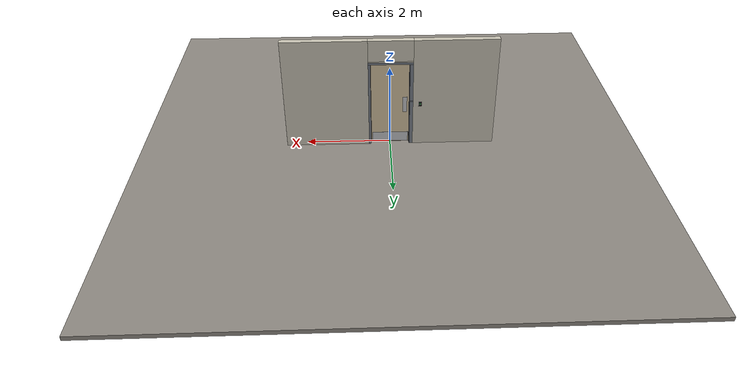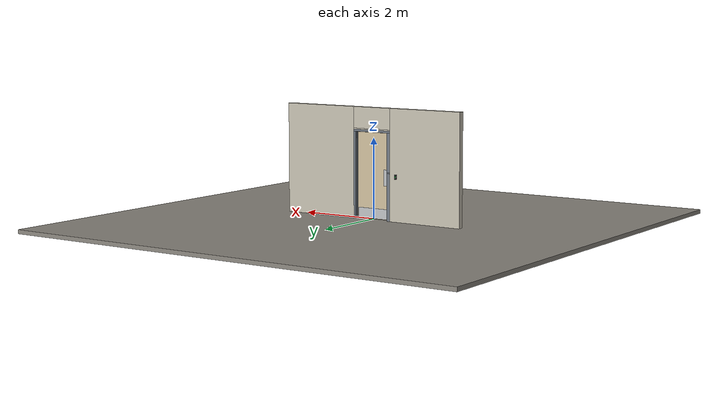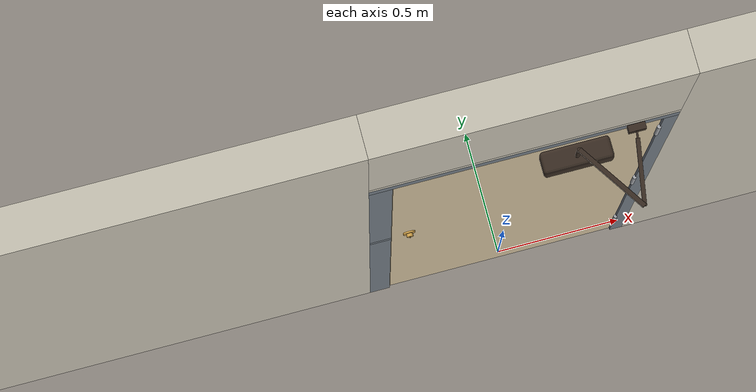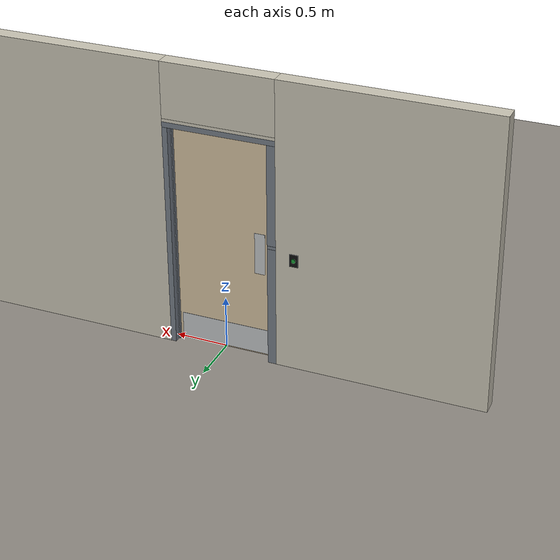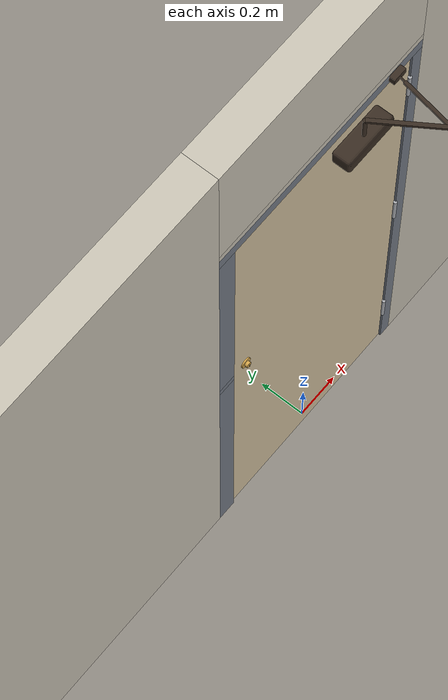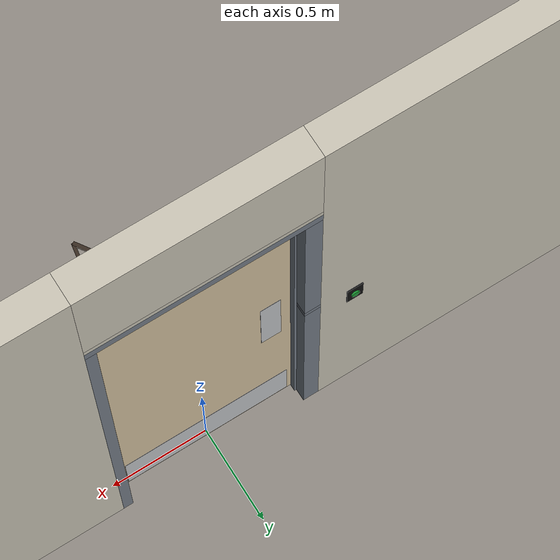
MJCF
<?xml version="1.0" ?>
<mujoco model="db0539_swing_single_full">
  <compiler angle="radian" meshdir="../../hardware" texturedir="../../textures" autolimits="true" inertiafromgeom="false"/>
  <option timestep="0.002" integrator="implicitfast" cone="elliptic" impratio="10" noslip_iterations="3">
    <flag multiccd="enable"/>
  </option>
  <size memory="16M"/>
  <default>
    <geom condim="4" solref="0.005 1" solimp="0.95 0.99 0.001"/>
    <joint solreflimit="0.005 1" solimplimit="0.95 0.99 0.001"/>
    <tendon solreflimit="0.005 1"/>
    <equality solref="0.002 1"/>
  </default>
  <visual>
    <headlight ambient="0.4 0.4 0.4" diffuse="0.7 0.7 0.7" specular="0.2 0.2 0.2"/>
    <quality shadowsize="4096"/>
    <map znear="0.01" zfar="60"/>
  </visual>
  <asset>
    <mesh name="closer_body_b226fdb10b" file="closer_body_b226fdb10b.obj"/>
    <mesh name="cyl_face_e9e5036966" file="cyl_face_e9e5036966.obj"/>
    <mesh name="hinge_e22b26c0c1" file="hinge_e22b26c0c1.obj"/>
    <mesh name="hinge_jamb_e1d088f8dc" file="hinge_jamb_e1d088f8dc.obj"/>
    <material name="mat_floor" rgba="0.55 0.53 0.5 1" specular="0.2" shininess="0.15" reflectance="0"/>
    <material name="mat_wall" rgba="0.78 0.76 0.7 1" specular="0.2" shininess="0.1" reflectance="0"/>
    <material name="mat_leaf" rgba="0.82 0.75 0.62 1" specular="0.23" shininess="0.45" reflectance="0.02"/>
    <material name="mat_hinge" rgba="0.65 0.66 0.68 1" specular="0.74" shininess="0.5" reflectance="0.36"/>
    <material name="mat_op_stainless" rgba="0.75 0.76 0.77 1" specular="0.8" shininess="0.65" reflectance="0.4"/>
    <material name="mat_deadbolt" rgba="0.85 0.66 0.3 1" specular="0.8" shininess="0.75" reflectance="0.4"/>
    <material name="mat_frame" rgba="0.45 0.48 0.52 1" specular="0.32" shininess="0.6" reflectance="0.08"/>
    <material name="mat_closer" rgba="0.22 0.17 0.13 1" specular="0.8" shininess="0.6" reflectance="0.4"/>
    <material name="mat_kick" rgba="0.75 0.76 0.77 1" specular="0.8" shininess="0.65" reflectance="0.4"/>
    <material name="mat_wallreader" rgba="0.05 0.05 0.05 1" specular="0.38" shininess="0.3" reflectance="0.12"/>
    <material name="mat_rex" rgba="0.1 0.6 0.2 1" specular="0.2" shininess="0.6" reflectance="0"/>
    <texture name="skybox" type="skybox" builtin="gradient" rgb1="0.6 0.7 0.85" rgb2="0.9 0.92 0.95" width="256" height="256"/>
  </asset>
  <worldbody>
    <light name="sun" pos="1.5 -2.5 4" dir="-0.3 0.5 -0.8" directional="true" diffuse="0.8 0.8 0.8" specular="0.3 0.3 0.3" castshadow="true"/>
    <light name="fill" pos="-1.5 2.5 3" dir="0.3 -0.5 -0.7" directional="true" diffuse="0.35 0.35 0.4" castshadow="false"/>
    <camera name="robot_view" pos="0 -2.594313 1.812087" xyaxes="1 0 0 0 0.26963 0.962964" fovy="52"/>
    <camera name="far_view" pos="0 2.681312 1.812087" xyaxes="-1 0 0 0 -0.26963 0.962964" fovy="52"/>
    <camera name="iso" pos="-2.004737 -2.172262 2.234138" xyaxes="0.741536 -0.670913 0 0.242917 0.268487 0.932151" fovy="46"/>
    <camera name="detail_handle" pos="-0.1735 -0.7565 1.32" xyaxes="0.97561 0.219512 0 -0.070934 0.315262 0.94635" fovy="38"/>
    <geom name="floor" type="box" size="6 6 0.05" pos="0 0 -0.05" material="mat_floor" group="0" contype="1" conaffinity="1" friction="0.8 0.005 0.0001" density="2400"/>
    <geom name="wall_left" type="box" size="0.97975 0.0725 1.3735" pos="-1.52025 0.0435 1.3735" material="mat_wall" group="0" contype="1" conaffinity="1" friction="0.6 0.005 0.0001" density="800"/>
    <geom name="wall_right" type="box" size="0.99475 0.0725 1.3735" pos="1.50525 0.0435 1.3735" material="mat_wall" group="0" contype="1" conaffinity="1" friction="0.6 0.005 0.0001" density="800"/>
    <geom name="wall_header" type="box" size="0.5255 0.0725 0.26" pos="-0.015 0.0435 2.487" material="mat_wall" group="0" contype="1" conaffinity="1" friction="0.6 0.005 0.0001" density="800"/>
    <geom name="hinge_0_jamb" type="mesh" mesh="hinge_jamb_e1d088f8dc" pos="0.4575 -0.029 0.259" quat="0 0 1 0" material="mat_hinge" group="1" contype="0" conaffinity="0" density="7850"/>
    <geom name="hinge_1_jamb" type="mesh" mesh="hinge_jamb_e1d088f8dc" pos="0.4575 -0.029 1.076" quat="0 0 1 0" material="mat_hinge" group="1" contype="0" conaffinity="0" density="7850"/>
    <geom name="hinge_2_jamb" type="mesh" mesh="hinge_jamb_e1d088f8dc" pos="0.4575 -0.029 1.963" quat="0 0 1 0" material="mat_hinge" group="1" contype="0" conaffinity="0" density="7850"/>
    <geom name="leaf_deadbolt_strike_b" type="box" size="0.0155 0.003 0.0005" pos="-0.46 0 1.1615" quat="0.5 0.5 0.5 0.5" material="mat_deadbolt" group="1" contype="0" conaffinity="0" density="7800"/>
    <geom name="leaf_deadbolt_strike_l" type="box" size="0.003 0.0155 0.0005" pos="-0.46 -0.0125 1.18" quat="0.5 0.5 0.5 0.5" material="mat_deadbolt" group="1" contype="0" conaffinity="0" density="7800"/>
    <geom name="leaf_deadbolt_strike_t" type="box" size="0.0155 0.003 0.0005" pos="-0.46 0 1.1985" quat="0.5 0.5 0.5 0.5" material="mat_deadbolt" group="1" contype="0" conaffinity="0" density="7800"/>
    <geom name="leaf_deadbolt_strike_r" type="box" size="0.003 0.0155 0.0005" pos="-0.46 0.0125 1.18" quat="0.5 0.5 0.5 0.5" material="mat_deadbolt" group="1" contype="0" conaffinity="0" density="7800"/>
    <geom name="jamb_hinge" type="box" size="0.025 0.0725 1.0735" pos="0.4855 0.0435 1.0735" material="mat_frame" group="0" contype="1" conaffinity="1" friction="0.6 0.005 0.0001" density="300"/>
    <geom name="strike_1180_wall_n" type="box" size="0.04 0.05325 0.0155" pos="-0.5005 0.06275 1.18" material="mat_frame" group="0" contype="1" conaffinity="1" friction="0.6 0.005 0.0001" density="300"/>
    <geom name="strike_1180_wall_p" type="box" size="0.04 0.00975 0.0155" pos="-0.5005 -0.01925 1.18" material="mat_frame" group="0" contype="1" conaffinity="1" friction="0.6 0.005 0.0001" density="300"/>
    <geom name="strike_1180_back" type="box" size="0.0253 0.0095 0.0155" pos="-0.5152 0 1.18" material="mat_frame" group="0" contype="1" conaffinity="1" friction="0.6 0.005 0.0001" density="300"/>
    <geom name="jamb_strike_0" type="box" size="0.04 0.0725 0.58225" pos="-0.5005 0.0435 0.58225" material="mat_frame" group="0" contype="1" conaffinity="1" friction="0.6 0.005 0.0001" density="300"/>
    <geom name="jamb_strike_1" type="box" size="0.04 0.0725 0.47575" pos="-0.5005 0.0435 1.67125" material="mat_frame" group="0" contype="1" conaffinity="1" friction="0.6 0.005 0.0001" density="300"/>
    <geom name="jamb_head" type="box" size="0.5255 0.0725 0.025" pos="-0.015 0.0435 2.172" material="mat_frame" group="0" contype="1" conaffinity="1" friction="0.6 0.005 0.0001" density="300"/>
    <geom name="head_stud" type="box" size="0.5255 0.0725 0.015" pos="-0.015 0.0435 2.212" material="mat_wall" group="0" contype="1" conaffinity="1" friction="0.6 0.005 0.0001" density="500"/>
    <geom name="stop_hinge" type="box" size="0.0055 0.016 1.0735" pos="0.455 0.0385 1.0735" material="mat_frame" group="0" contype="1" conaffinity="1" friction="0.6 0.005 0.0001" density="300"/>
    <geom name="stop_strike" type="box" size="0.0055 0.016 1.0735" pos="-0.455 0.0385 1.0735" material="mat_frame" group="0" contype="1" conaffinity="1" friction="0.6 0.005 0.0001" density="300"/>
    <geom name="stop_head" type="box" size="0.4605 0.016 0.0055" pos="0 0.0385 2.1415" material="mat_frame" group="0" contype="1" conaffinity="1" friction="0.6 0.005 0.0001" density="300"/>
    <geom name="closer_bracket" type="box" size="0.03 0.012 0.014" pos="0.3605 -0.041 2.177" material="mat_closer" group="1" contype="0" conaffinity="0" density="2700"/>
    <geom name="rex_plate" type="box" size="0.04 0.003 0.06" pos="-0.7105 0.119 1.1" material="mat_wallreader" group="1" contype="0" conaffinity="0" density="1000"/>
    <site name="approach_point" pos="0 -1.5 0" quat="1 0 0 0" size="0.05" rgba="0.2 0.9 0.2 0.5" group="4"/>
    <site name="goal_point" pos="0 1.5 0" quat="1 0 0 0" size="0.05" rgba="0.2 0.9 0.2 0.5" group="4"/>
    <site name="door_plane_center" pos="0 0 1.0735" quat="1 0 0 0" size="0.02" rgba="0.2 0.9 0.2 0.5" group="4"/>
    <body name="rex_button" pos="-0.7105 0.122 1.1">
      <inertial pos="0 0.004 0" mass="0.010053" quat="0 0 0.707107 -0.707107" diaginertia="0.000001059 0.000001059 0.000002011"/>
      <joint name="rex_button_slide" type="slide" axis="0 -1 0" limited="true" range="0 0.004" damping="1" stiffness="1500" springref="-0.004" armature="0.1"/>
      <geom name="rex_button_geom" type="cylinder" size="0.02 0.004" pos="0 0.004 0" quat="0.707107 -0.707107 0 0" material="mat_rex" group="0" contype="1" conaffinity="1" friction="0.6 0.005 0.0001" density="1000"/>
    </body>
    <body name="leaf" pos="0.4605 0 0">
      <inertial pos="-0.431382 -0.009089 1.186551" mass="41.801718" quat="0.51436 -0.512312 -0.476897 -0.49552" diaginertia="2.676435711 20.449943042 23.078465321"/>
      <joint name="leaf_hinge" type="hinge" axis="0 0 1" pos="-0.003 -0.029 0" limited="true" range="0 1.570796" damping="10.268966" frictionloss="0.652348" stiffness="11.911156" springref="-1.783202" armature="0.02"/>
      <geom name="leaf_slab" type="box" size="0.457 0.022 1.067" pos="-0.46 0 1.076" material="mat_leaf" group="0" contype="1" conaffinity="1" friction="0.4 0.005 0.0001" density="1"/>
      <geom name="hinge_0" type="mesh" mesh="hinge_e22b26c0c1" pos="-0.003 -0.029 0.259" quat="0 0 1 0" material="mat_hinge" group="1" contype="0" conaffinity="0" density="7850"/>
      <geom name="hinge_1" type="mesh" mesh="hinge_e22b26c0c1" pos="-0.003 -0.029 1.076" quat="0 0 1 0" material="mat_hinge" group="1" contype="0" conaffinity="0" density="7850"/>
      <geom name="hinge_2" type="mesh" mesh="hinge_e22b26c0c1" pos="-0.003 -0.029 1.963" quat="0 0 1 0" material="mat_hinge" group="1" contype="0" conaffinity="0" density="7850"/>
      <geom name="leaf_push_plate_p" type="box" size="0.05 0.0008 0.2" pos="-0.812 0.0228 1.04" material="mat_op_stainless" group="1" contype="0" conaffinity="0" density="7900"/>
      <geom name="leaf_deadbolt_faceplate" type="box" size="0.0006 0.014 0.0245" pos="-0.9164 0 1.18" material="mat_deadbolt" group="1" contype="0" conaffinity="0" density="8500"/>
      <geom name="leaf_deadbolt_cylinder_face" type="mesh" mesh="cyl_face_e9e5036966" pos="-0.852 -0.022 1.18" quat="0 0 -0.707107 0.707107" material="mat_deadbolt" group="1" contype="0" conaffinity="0" density="7100"/>
      <geom name="closer_body" type="mesh" mesh="closer_body_b226fdb10b" pos="-0.3 -0.022 2.054" quat="0 0 -0.707107 0.707107" material="mat_closer" group="1" contype="0" conaffinity="0" density="2000"/>
      <geom name="closer_body_col" type="box" size="0.12 0.04 0.03" pos="-0.3 -0.062 2.054" material="mat_closer" group="3" contype="1" conaffinity="1" rgba="0.8 0.3 0.3 0.25" friction="0.6 0.005 0.0001" density="2000"/>
      <geom name="closer_pinion_shaft" type="cylinder" size="0.008 0.0615" pos="-0.3 -0.064 2.1155" material="mat_closer" group="1" contype="0" conaffinity="0" density="2700"/>
      <geom name="kick_plate_p" type="box" size="0.427 0.0008 0.125" pos="-0.46 0.0228 0.144" material="mat_kick" group="2" contype="0" conaffinity="0" density="7900"/>
      <site name="leaf_push_plate_push_p" pos="-0.812 0.022 1.04" quat="1 0 0 0" size="0.012" rgba="0.2 0.9 0.2 0.5" group="4"/>
      <site name="leaf_edge_mid" pos="-0.917 0 1.067" quat="1 0 0 0" size="0.02" rgba="0.2 0.9 0.2 0.5" group="4"/>
      <body name="leaf_deadbolt" pos="-0.917 0 1.18">
        <inertial pos="0.0023 0 0" mass="0.18836" quat="0 0 0.707107 0.707107" diaginertia="0.000013829 0.000052194 0.000057986"/>
        <geom name="leaf_deadbolt_box" type="box" size="0.0277 0.008 0.0125" pos="0.0023 0 0" material="mat_deadbolt" group="0" contype="1" conaffinity="1" friction="0.3 0.005 0.0001" density="8500"/>
      </body>
      <body name="closer_arm_main" pos="-0.3 -0.064 2.177" quat="0.881485 0 0 -0.472212">
        <inertial pos="0.14 0 0" mass="0.12096" quat="1 0 0 0" diaginertia="0.000003588 0.00079128 0.000792852"/>
        <joint name="closer_pinion" type="hinge" axis="0 0 1" limited="false" damping="0.01" armature="0.002"/>
        <geom name="closer_arm_main_geom" type="box" size="0.14 0.008 0.005" pos="0.14 0 0" material="mat_closer" group="1" contype="0" conaffinity="0" density="2700"/>
        <body name="closer_arm_fore" pos="0.28 0 0" quat="0.371222 0 0 0.928544">
          <inertial pos="0.128088 0 0" mass="0.076531" quat="1 0 0 0" diaginertia="0.000001771 0.000437665 0.000438201"/>
          <joint name="closer_elbow" type="hinge" axis="0 0 1" limited="false" damping="0.01" armature="0.002"/>
          <geom name="closer_arm_fore_geom" type="box" size="0.1125 0.007 0.004" pos="0.1125 0 0" material="mat_closer" group="1" contype="0" conaffinity="0" density="2700"/>
          <geom name="closer_fore_neck" type="box" size="0.0175 0.003 0.003" pos="0.2425 0 0" material="mat_closer" group="1" contype="0" conaffinity="0" density="2700"/>
          <geom name="closer_fore_pivot" type="cylinder" size="0.005 0.012" pos="0.26 0 0" material="mat_closer" group="1" contype="0" conaffinity="0" density="2700"/>
        </body>
      </body>
    </body>
  </worldbody>
  <equality>
    <connect name="closer_arm_connect" body1="closer_arm_fore" body2="world" anchor="0.26 0 0" active="true"/>
  </equality>
  <contact>
    <exclude body1="closer_arm_main" body2="leaf"/>
    <exclude body1="closer_arm_fore" body2="leaf"/>
    <exclude body1="closer_arm_main" body2="closer_arm_fore"/>
  </contact>
  <sensor>
    <jointpos name="leaf_hinge_pos" joint="leaf_hinge"/>
    <jointvel name="leaf_hinge_vel" joint="leaf_hinge"/>
    <jointpos name="rex_button_slide_pos" joint="rex_button_slide"/>
    <jointvel name="rex_button_slide_vel" joint="rex_button_slide"/>
  </sensor>
</mujoco>
